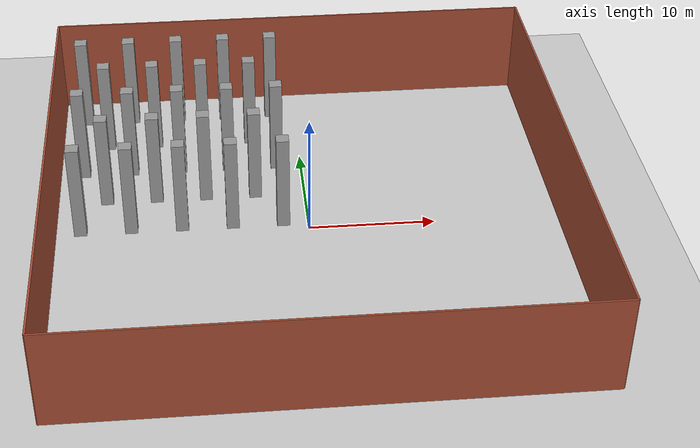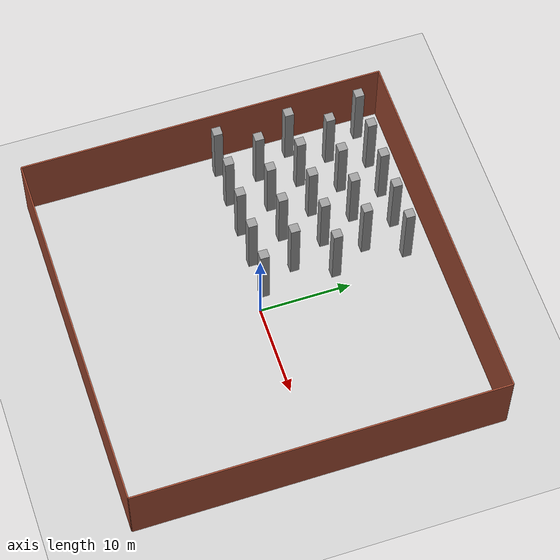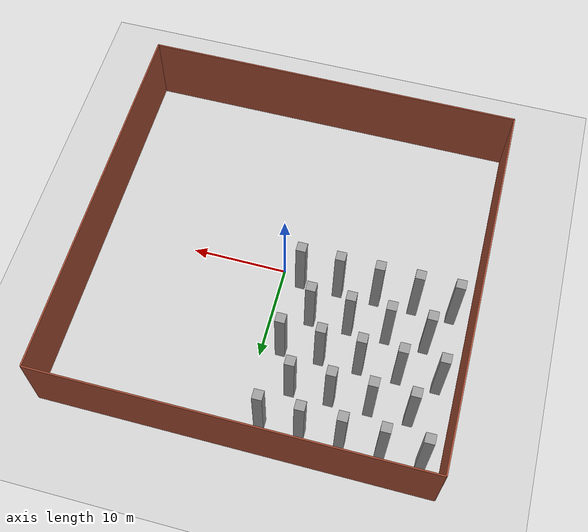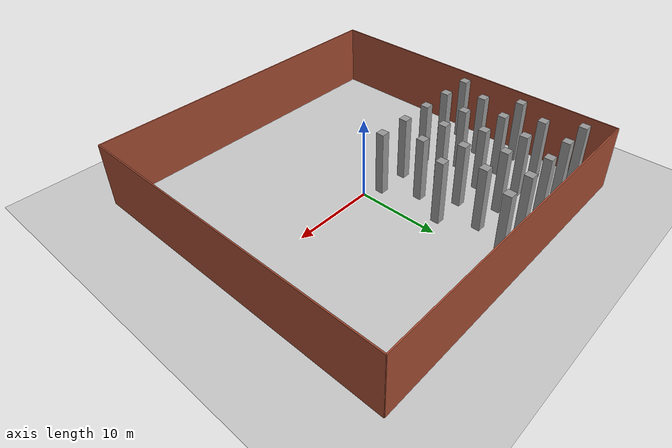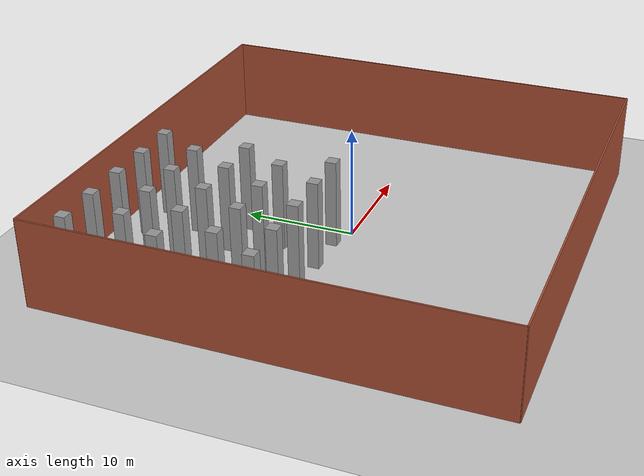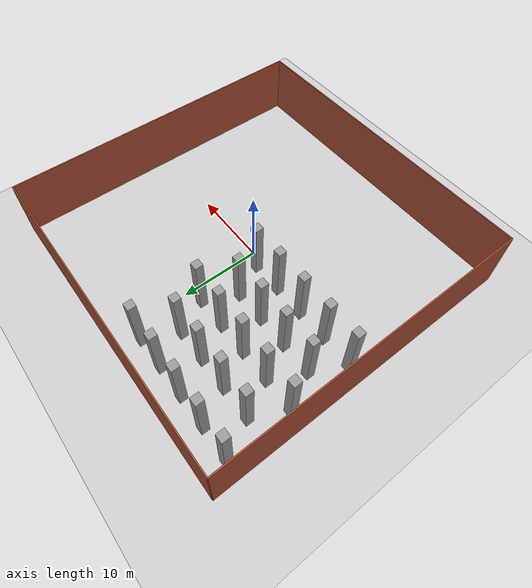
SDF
<sdf version="1.7">
 <world name="default">
  <model name="ground_plane">
   <static>1</static>
   <link name="link">
    <collision name="collision">
     <geometry><plane><normal>0 0 1</normal><size>100 100</size></plane></geometry>
     <surface>
      <contact><collide_bitmask>65535</collide_bitmask></contact>
      <friction><ode><mu>100</mu><mu2>50</mu2></ode></friction>
     </surface>
    </collision>
    <visual name="visual">
     <cast_shadows>0</cast_shadows>
     <geometry><plane><normal>0 0 1</normal><size>100 100</size></plane></geometry>
     <material>
      <script><uri>file://media/materials/scripts/gazebo.material</uri><name>Gazebo/Grey</name></script>
     </material>
    </visual>
   </link>
  </model>
  <model name="sim_room_square">
   <link name="Wall_14">
    <collision name="Wall_14_Collision">
     <geometry><box><size>40 0.15 8</size></box></geometry>
     <pose>0 0 4 0 -0 0</pose>
    </collision>
    <visual name="Wall_14_Visual">
     <pose>0 0 4 0 -0 0</pose>
     <geometry><box><size>40 0.15 8</size></box></geometry>
     <material>
      <script><uri>file://media/materials/scripts/gazebo.material</uri><name>Gazebo/Bricks</name></script>
      <ambient>1 1 1 1</ambient>
     </material>
     <meta><layer>0</layer></meta>
    </visual>
    <pose>20 -0 0 0 -0 -1.5708</pose>
   </link>
   <link name="Wall_15">
    <collision name="Wall_15_Collision">
     <geometry><box><size>40 0.15 8</size></box></geometry>
     <pose>0 0 4 0 -0 0</pose>
    </collision>
    <visual name="Wall_15_Visual">
     <pose>0 0 4 0 -0 0</pose>
     <geometry><box><size>40 0.15 8</size></box></geometry>
     <material>
      <script><uri>file://media/materials/scripts/gazebo.material</uri><name>Gazebo/Bricks</name></script>
      <ambient>1 1 1 1</ambient>
     </material>
     <meta><layer>0</layer></meta>
    </visual>
    <pose>0 -20 0 0 -0 3.14159</pose>
   </link>
   <link name="Wall_16">
    <collision name="Wall_16_Collision">
     <geometry><box><size>40 0.15 8</size></box></geometry>
     <pose>0 0 4 0 -0 0</pose>
    </collision>
    <visual name="Wall_16_Visual">
     <pose>0 0 4 0 -0 0</pose>
     <geometry><box><size>40 0.15 8</size></box></geometry>
     <material>
      <script><uri>file://media/materials/scripts/gazebo.material</uri><name>Gazebo/Bricks</name></script>
      <ambient>1 1 1 1</ambient>
     </material>
     <meta><layer>0</layer></meta>
    </visual>
    <pose>-20 -0 0 0 -0 1.5708</pose>
   </link>
   <link name="Wall_19">
    <collision name="Wall_19_Collision">
     <geometry><box><size>40 0.15 8</size></box></geometry>
     <pose>0 0 4 0 -0 0</pose>
    </collision>
    <visual name="Wall_19_Visual">
     <pose>0 0 4 0 -0 0</pose>
     <geometry><box><size>40 0.15 8</size></box></geometry>
     <material>
      <script><uri>file://media/materials/scripts/gazebo.material</uri><name>Gazebo/Bricks</name></script>
      <ambient>1 1 1 1</ambient>
     </material>
     <meta><layer>0</layer></meta>
    </visual>
    <pose>0 20 0 0 -0 0</pose>
   </link>
   <static>1</static>
  </model>
  <model name="unit_box_static48">
   <link name="link">
    <inertial>
     <mass>1</mass>
     <inertia>
      <ixx>0.166667</ixx>
      <ixy>0</ixy>
      <ixz>0</ixz>
      <iyy>0.166667</iyy>
      <iyz>0</iyz>
      <izz>0.166667</izz>
     </inertia>
    </inertial>
    <visual name="visual">
     <geometry><box><size>1 1 8</size></box></geometry>
     <material>
      <script><name>Gazebo/Grey</name><uri>file://media/materials/scripts/gazebo.material</uri></script>
      <shader type="pixel"/>
     </material>
    </visual>
    <collision name="collision">
     <geometry><box><size>1 1 8</size></box></geometry>
     <surface>
      <friction>
       <ode><mu>1</mu><mu2>1</mu2><fdir1>0 0 0</fdir1><slip1>0</slip1><slip2>0</slip2></ode>
       <torsional>
        <coefficient>1</coefficient>
        <patch_radius>0</patch_radius>
        <surface_radius>0</surface_radius>
        <use_patch_radius>1</use_patch_radius>
        <ode><slip>0</slip></ode>
       </torsional>
      </friction>
      <bounce><restitution_coefficient>0</restitution_coefficient><threshold>1e+06</threshold></bounce>
      <contact>
       <collide_without_contact>0</collide_without_contact>
       <collide_without_contact_bitmask>1</collide_without_contact_bitmask>
       <collide_bitmask>1</collide_bitmask>
       <ode>
        <soft_cfm>0</soft_cfm>
        <soft_erp>0.2</soft_erp>
        <kp>1e+13</kp>
        <kd>1</kd>
        <max_vel>0.01</max_vel>
        <min_depth>0</min_depth>
       </ode>
       <bullet>
        <split_impulse>1</split_impulse>
        <split_impulse_penetration_threshold>-0.01</split_impulse_penetration_threshold>
        <soft_cfm>0</soft_cfm>
        <soft_erp>0.2</soft_erp>
        <kp>1e+13</kp>
        <kd>1</kd>
       </bullet>
      </contact>
     </surface>
    </collision>
   </link>
   <static>1</static>
   <pose>-18 1 4 0 -0 0</pose>
  </model>
  <model name="unit_box_static49">
   <link name="link">
    <inertial>
     <mass>1</mass>
     <inertia>
      <ixx>0.166667</ixx>
      <ixy>0</ixy>
      <ixz>0</ixz>
      <iyy>0.166667</iyy>
      <iyz>0</iyz>
      <izz>0.166667</izz>
     </inertia>
    </inertial>
    <visual name="visual">
     <geometry><box><size>1 1 8</size></box></geometry>
     <material>
      <script><name>Gazebo/Grey</name><uri>file://media/materials/scripts/gazebo.material</uri></script>
      <shader type="pixel"/>
     </material>
    </visual>
    <collision name="collision">
     <geometry><box><size>1 1 8</size></box></geometry>
     <surface>
      <friction>
       <ode><mu>1</mu><mu2>1</mu2><fdir1>0 0 0</fdir1><slip1>0</slip1><slip2>0</slip2></ode>
       <torsional>
        <coefficient>1</coefficient>
        <patch_radius>0</patch_radius>
        <surface_radius>0</surface_radius>
        <use_patch_radius>1</use_patch_radius>
        <ode><slip>0</slip></ode>
       </torsional>
      </friction>
      <bounce><restitution_coefficient>0</restitution_coefficient><threshold>1e+06</threshold></bounce>
      <contact>
       <collide_without_contact>0</collide_without_contact>
       <collide_without_contact_bitmask>1</collide_without_contact_bitmask>
       <collide_bitmask>1</collide_bitmask>
       <ode>
        <soft_cfm>0</soft_cfm>
        <soft_erp>0.2</soft_erp>
        <kp>1e+13</kp>
        <kd>1</kd>
        <max_vel>0.01</max_vel>
        <min_depth>0</min_depth>
       </ode>
       <bullet>
        <split_impulse>1</split_impulse>
        <split_impulse_penetration_threshold>-0.01</split_impulse_penetration_threshold>
        <soft_cfm>0</soft_cfm>
        <soft_erp>0.2</soft_erp>
        <kp>1e+13</kp>
        <kd>1</kd>
       </bullet>
      </contact>
     </surface>
    </collision>
   </link>
   <static>1</static>
   <pose>-14 1 4 0 -0 0</pose>
  </model>
  <model name="unit_box_static50">
   <link name="link">
    <inertial>
     <mass>1</mass>
     <inertia>
      <ixx>0.166667</ixx>
      <ixy>0</ixy>
      <ixz>0</ixz>
      <iyy>0.166667</iyy>
      <iyz>0</iyz>
      <izz>0.166667</izz>
     </inertia>
    </inertial>
    <visual name="visual">
     <geometry><box><size>1 1 8</size></box></geometry>
     <material>
      <script><name>Gazebo/Grey</name><uri>file://media/materials/scripts/gazebo.material</uri></script>
      <shader type="pixel"/>
     </material>
    </visual>
    <collision name="collision">
     <geometry><box><size>1 1 8</size></box></geometry>
     <surface>
      <friction>
       <ode><mu>1</mu><mu2>1</mu2><fdir1>0 0 0</fdir1><slip1>0</slip1><slip2>0</slip2></ode>
       <torsional>
        <coefficient>1</coefficient>
        <patch_radius>0</patch_radius>
        <surface_radius>0</surface_radius>
        <use_patch_radius>1</use_patch_radius>
        <ode><slip>0</slip></ode>
       </torsional>
      </friction>
      <bounce><restitution_coefficient>0</restitution_coefficient><threshold>1e+06</threshold></bounce>
      <contact>
       <collide_without_contact>0</collide_without_contact>
       <collide_without_contact_bitmask>1</collide_without_contact_bitmask>
       <collide_bitmask>1</collide_bitmask>
       <ode>
        <soft_cfm>0</soft_cfm>
        <soft_erp>0.2</soft_erp>
        <kp>1e+13</kp>
        <kd>1</kd>
        <max_vel>0.01</max_vel>
        <min_depth>0</min_depth>
       </ode>
       <bullet>
        <split_impulse>1</split_impulse>
        <split_impulse_penetration_threshold>-0.01</split_impulse_penetration_threshold>
        <soft_cfm>0</soft_cfm>
        <soft_erp>0.2</soft_erp>
        <kp>1e+13</kp>
        <kd>1</kd>
       </bullet>
      </contact>
     </surface>
    </collision>
   </link>
   <static>1</static>
   <pose>-10 1 4 0 -0 0</pose>
  </model>
  <model name="unit_box_static51">
   <link name="link">
    <inertial>
     <mass>1</mass>
     <inertia>
      <ixx>0.166667</ixx>
      <ixy>0</ixy>
      <ixz>0</ixz>
      <iyy>0.166667</iyy>
      <iyz>0</iyz>
      <izz>0.166667</izz>
     </inertia>
    </inertial>
    <visual name="visual">
     <geometry><box><size>1 1 8</size></box></geometry>
     <material>
      <script><name>Gazebo/Grey</name><uri>file://media/materials/scripts/gazebo.material</uri></script>
      <shader type="pixel"/>
     </material>
    </visual>
    <collision name="collision">
     <geometry><box><size>1 1 8</size></box></geometry>
     <surface>
      <friction>
       <ode><mu>1</mu><mu2>1</mu2><fdir1>0 0 0</fdir1><slip1>0</slip1><slip2>0</slip2></ode>
       <torsional>
        <coefficient>1</coefficient>
        <patch_radius>0</patch_radius>
        <surface_radius>0</surface_radius>
        <use_patch_radius>1</use_patch_radius>
        <ode><slip>0</slip></ode>
       </torsional>
      </friction>
      <bounce><restitution_coefficient>0</restitution_coefficient><threshold>1e+06</threshold></bounce>
      <contact>
       <collide_without_contact>0</collide_without_contact>
       <collide_without_contact_bitmask>1</collide_without_contact_bitmask>
       <collide_bitmask>1</collide_bitmask>
       <ode>
        <soft_cfm>0</soft_cfm>
        <soft_erp>0.2</soft_erp>
        <kp>1e+13</kp>
        <kd>1</kd>
        <max_vel>0.01</max_vel>
        <min_depth>0</min_depth>
       </ode>
       <bullet>
        <split_impulse>1</split_impulse>
        <split_impulse_penetration_threshold>-0.01</split_impulse_penetration_threshold>
        <soft_cfm>0</soft_cfm>
        <soft_erp>0.2</soft_erp>
        <kp>1e+13</kp>
        <kd>1</kd>
       </bullet>
      </contact>
     </surface>
    </collision>
   </link>
   <static>1</static>
   <pose>-6 1 4 0 -0 0</pose>
  </model>
  <model name="unit_box_static52">
   <link name="link">
    <inertial>
     <mass>1</mass>
     <inertia>
      <ixx>0.166667</ixx>
      <ixy>0</ixy>
      <ixz>0</ixz>
      <iyy>0.166667</iyy>
      <iyz>0</iyz>
      <izz>0.166667</izz>
     </inertia>
    </inertial>
    <visual name="visual">
     <geometry><box><size>1 1 8</size></box></geometry>
     <material>
      <script><name>Gazebo/Grey</name><uri>file://media/materials/scripts/gazebo.material</uri></script>
      <shader type="pixel"/>
     </material>
    </visual>
    <collision name="collision">
     <geometry><box><size>1 1 8</size></box></geometry>
     <surface>
      <friction>
       <ode><mu>1</mu><mu2>1</mu2><fdir1>0 0 0</fdir1><slip1>0</slip1><slip2>0</slip2></ode>
       <torsional>
        <coefficient>1</coefficient>
        <patch_radius>0</patch_radius>
        <surface_radius>0</surface_radius>
        <use_patch_radius>1</use_patch_radius>
        <ode><slip>0</slip></ode>
       </torsional>
      </friction>
      <bounce><restitution_coefficient>0</restitution_coefficient><threshold>1e+06</threshold></bounce>
      <contact>
       <collide_without_contact>0</collide_without_contact>
       <collide_without_contact_bitmask>1</collide_without_contact_bitmask>
       <collide_bitmask>1</collide_bitmask>
       <ode>
        <soft_cfm>0</soft_cfm>
        <soft_erp>0.2</soft_erp>
        <kp>1e+13</kp>
        <kd>1</kd>
        <max_vel>0.01</max_vel>
        <min_depth>0</min_depth>
       </ode>
       <bullet>
        <split_impulse>1</split_impulse>
        <split_impulse_penetration_threshold>-0.01</split_impulse_penetration_threshold>
        <soft_cfm>0</soft_cfm>
        <soft_erp>0.2</soft_erp>
        <kp>1e+13</kp>
        <kd>1</kd>
       </bullet>
      </contact>
     </surface>
    </collision>
   </link>
   <static>1</static>
   <pose>-2 1 4 0 -0 0</pose>
  </model>
  <model name="unit_box_static58">
   <link name="link">
    <inertial>
     <mass>1</mass>
     <inertia>
      <ixx>0.166667</ixx>
      <ixy>0</ixy>
      <ixz>0</ixz>
      <iyy>0.166667</iyy>
      <iyz>0</iyz>
      <izz>0.166667</izz>
     </inertia>
    </inertial>
    <visual name="visual">
     <geometry><box><size>1 1 8</size></box></geometry>
     <material>
      <script><name>Gazebo/Grey</name><uri>file://media/materials/scripts/gazebo.material</uri></script>
      <shader type="pixel"/>
     </material>
    </visual>
    <collision name="collision">
     <geometry><box><size>1 1 8</size></box></geometry>
     <surface>
      <friction>
       <ode><mu>1</mu><mu2>1</mu2><fdir1>0 0 0</fdir1><slip1>0</slip1><slip2>0</slip2></ode>
       <torsional>
        <coefficient>1</coefficient>
        <patch_radius>0</patch_radius>
        <surface_radius>0</surface_radius>
        <use_patch_radius>1</use_patch_radius>
        <ode><slip>0</slip></ode>
       </torsional>
      </friction>
      <bounce><restitution_coefficient>0</restitution_coefficient><threshold>1e+06</threshold></bounce>
      <contact>
       <collide_without_contact>0</collide_without_contact>
       <collide_without_contact_bitmask>1</collide_without_contact_bitmask>
       <collide_bitmask>1</collide_bitmask>
       <ode>
        <soft_cfm>0</soft_cfm>
        <soft_erp>0.2</soft_erp>
        <kp>1e+13</kp>
        <kd>1</kd>
        <max_vel>0.01</max_vel>
        <min_depth>0</min_depth>
       </ode>
       <bullet>
        <split_impulse>1</split_impulse>
        <split_impulse_penetration_threshold>-0.01</split_impulse_penetration_threshold>
        <soft_cfm>0</soft_cfm>
        <soft_erp>0.2</soft_erp>
        <kp>1e+13</kp>
        <kd>1</kd>
       </bullet>
      </contact>
     </surface>
    </collision>
   </link>
   <static>1</static>
   <pose>-16 5 4 0 -0 0</pose>
  </model>
  <model name="unit_box_static59">
   <link name="link">
    <inertial>
     <mass>1</mass>
     <inertia>
      <ixx>0.166667</ixx>
      <ixy>0</ixy>
      <ixz>0</ixz>
      <iyy>0.166667</iyy>
      <iyz>0</iyz>
      <izz>0.166667</izz>
     </inertia>
    </inertial>
    <visual name="visual">
     <geometry><box><size>1 1 8</size></box></geometry>
     <material>
      <script><name>Gazebo/Grey</name><uri>file://media/materials/scripts/gazebo.material</uri></script>
      <shader type="pixel"/>
     </material>
    </visual>
    <collision name="collision">
     <geometry><box><size>1 1 8</size></box></geometry>
     <surface>
      <friction>
       <ode><mu>1</mu><mu2>1</mu2><fdir1>0 0 0</fdir1><slip1>0</slip1><slip2>0</slip2></ode>
       <torsional>
        <coefficient>1</coefficient>
        <patch_radius>0</patch_radius>
        <surface_radius>0</surface_radius>
        <use_patch_radius>1</use_patch_radius>
        <ode><slip>0</slip></ode>
       </torsional>
      </friction>
      <bounce><restitution_coefficient>0</restitution_coefficient><threshold>1e+06</threshold></bounce>
      <contact>
       <collide_without_contact>0</collide_without_contact>
       <collide_without_contact_bitmask>1</collide_without_contact_bitmask>
       <collide_bitmask>1</collide_bitmask>
       <ode>
        <soft_cfm>0</soft_cfm>
        <soft_erp>0.2</soft_erp>
        <kp>1e+13</kp>
        <kd>1</kd>
        <max_vel>0.01</max_vel>
        <min_depth>0</min_depth>
       </ode>
       <bullet>
        <split_impulse>1</split_impulse>
        <split_impulse_penetration_threshold>-0.01</split_impulse_penetration_threshold>
        <soft_cfm>0</soft_cfm>
        <soft_erp>0.2</soft_erp>
        <kp>1e+13</kp>
        <kd>1</kd>
       </bullet>
      </contact>
     </surface>
    </collision>
   </link>
   <static>1</static>
   <pose>-12 5 4 0 -0 0</pose>
  </model>
  <model name="unit_box_static60">
   <link name="link">
    <inertial>
     <mass>1</mass>
     <inertia>
      <ixx>0.166667</ixx>
      <ixy>0</ixy>
      <ixz>0</ixz>
      <iyy>0.166667</iyy>
      <iyz>0</iyz>
      <izz>0.166667</izz>
     </inertia>
    </inertial>
    <visual name="visual">
     <geometry><box><size>1 1 8</size></box></geometry>
     <material>
      <script><name>Gazebo/Grey</name><uri>file://media/materials/scripts/gazebo.material</uri></script>
      <shader type="pixel"/>
     </material>
    </visual>
    <collision name="collision">
     <geometry><box><size>1 1 8</size></box></geometry>
     <surface>
      <friction>
       <ode><mu>1</mu><mu2>1</mu2><fdir1>0 0 0</fdir1><slip1>0</slip1><slip2>0</slip2></ode>
       <torsional>
        <coefficient>1</coefficient>
        <patch_radius>0</patch_radius>
        <surface_radius>0</surface_radius>
        <use_patch_radius>1</use_patch_radius>
        <ode><slip>0</slip></ode>
       </torsional>
      </friction>
      <bounce><restitution_coefficient>0</restitution_coefficient><threshold>1e+06</threshold></bounce>
      <contact>
       <collide_without_contact>0</collide_without_contact>
       <collide_without_contact_bitmask>1</collide_without_contact_bitmask>
       <collide_bitmask>1</collide_bitmask>
       <ode>
        <soft_cfm>0</soft_cfm>
        <soft_erp>0.2</soft_erp>
        <kp>1e+13</kp>
        <kd>1</kd>
        <max_vel>0.01</max_vel>
        <min_depth>0</min_depth>
       </ode>
       <bullet>
        <split_impulse>1</split_impulse>
        <split_impulse_penetration_threshold>-0.01</split_impulse_penetration_threshold>
        <soft_cfm>0</soft_cfm>
        <soft_erp>0.2</soft_erp>
        <kp>1e+13</kp>
        <kd>1</kd>
       </bullet>
      </contact>
     </surface>
    </collision>
   </link>
   <static>1</static>
   <pose>-8 5 4 0 -0 0</pose>
  </model>
  <model name="unit_box_static61">
   <link name="link">
    <inertial>
     <mass>1</mass>
     <inertia>
      <ixx>0.166667</ixx>
      <ixy>0</ixy>
      <ixz>0</ixz>
      <iyy>0.166667</iyy>
      <iyz>0</iyz>
      <izz>0.166667</izz>
     </inertia>
    </inertial>
    <visual name="visual">
     <geometry><box><size>1 1 8</size></box></geometry>
     <material>
      <script><name>Gazebo/Grey</name><uri>file://media/materials/scripts/gazebo.material</uri></script>
      <shader type="pixel"/>
     </material>
    </visual>
    <collision name="collision">
     <geometry><box><size>1 1 8</size></box></geometry>
     <surface>
      <friction>
       <ode><mu>1</mu><mu2>1</mu2><fdir1>0 0 0</fdir1><slip1>0</slip1><slip2>0</slip2></ode>
       <torsional>
        <coefficient>1</coefficient>
        <patch_radius>0</patch_radius>
        <surface_radius>0</surface_radius>
        <use_patch_radius>1</use_patch_radius>
        <ode><slip>0</slip></ode>
       </torsional>
      </friction>
      <bounce><restitution_coefficient>0</restitution_coefficient><threshold>1e+06</threshold></bounce>
      <contact>
       <collide_without_contact>0</collide_without_contact>
       <collide_without_contact_bitmask>1</collide_without_contact_bitmask>
       <collide_bitmask>1</collide_bitmask>
       <ode>
        <soft_cfm>0</soft_cfm>
        <soft_erp>0.2</soft_erp>
        <kp>1e+13</kp>
        <kd>1</kd>
        <max_vel>0.01</max_vel>
        <min_depth>0</min_depth>
       </ode>
       <bullet>
        <split_impulse>1</split_impulse>
        <split_impulse_penetration_threshold>-0.01</split_impulse_penetration_threshold>
        <soft_cfm>0</soft_cfm>
        <soft_erp>0.2</soft_erp>
        <kp>1e+13</kp>
        <kd>1</kd>
       </bullet>
      </contact>
     </surface>
    </collision>
   </link>
   <static>1</static>
   <pose>-4 5 4 0 -0 0</pose>
  </model>
  <model name="unit_box_static67">
   <link name="link">
    <inertial>
     <mass>1</mass>
     <inertia>
      <ixx>0.166667</ixx>
      <ixy>0</ixy>
      <ixz>0</ixz>
      <iyy>0.166667</iyy>
      <iyz>0</iyz>
      <izz>0.166667</izz>
     </inertia>
    </inertial>
    <visual name="visual">
     <geometry><box><size>1 1 8</size></box></geometry>
     <material>
      <script><name>Gazebo/Grey</name><uri>file://media/materials/scripts/gazebo.material</uri></script>
      <shader type="pixel"/>
     </material>
    </visual>
    <collision name="collision">
     <geometry><box><size>1 1 8</size></box></geometry>
     <surface>
      <friction>
       <ode><mu>1</mu><mu2>1</mu2><fdir1>0 0 0</fdir1><slip1>0</slip1><slip2>0</slip2></ode>
       <torsional>
        <coefficient>1</coefficient>
        <patch_radius>0</patch_radius>
        <surface_radius>0</surface_radius>
        <use_patch_radius>1</use_patch_radius>
        <ode><slip>0</slip></ode>
       </torsional>
      </friction>
      <bounce><restitution_coefficient>0</restitution_coefficient><threshold>1e+06</threshold></bounce>
      <contact>
       <collide_without_contact>0</collide_without_contact>
       <collide_without_contact_bitmask>1</collide_without_contact_bitmask>
       <collide_bitmask>1</collide_bitmask>
       <ode>
        <soft_cfm>0</soft_cfm>
        <soft_erp>0.2</soft_erp>
        <kp>1e+13</kp>
        <kd>1</kd>
        <max_vel>0.01</max_vel>
        <min_depth>0</min_depth>
       </ode>
       <bullet>
        <split_impulse>1</split_impulse>
        <split_impulse_penetration_threshold>-0.01</split_impulse_penetration_threshold>
        <soft_cfm>0</soft_cfm>
        <soft_erp>0.2</soft_erp>
        <kp>1e+13</kp>
        <kd>1</kd>
       </bullet>
      </contact>
     </surface>
    </collision>
   </link>
   <static>1</static>
   <pose>-18 9 4 0 -0 0</pose>
  </model>
  <model name="unit_box_static68">
   <link name="link">
    <inertial>
     <mass>1</mass>
     <inertia>
      <ixx>0.166667</ixx>
      <ixy>0</ixy>
      <ixz>0</ixz>
      <iyy>0.166667</iyy>
      <iyz>0</iyz>
      <izz>0.166667</izz>
     </inertia>
    </inertial>
    <visual name="visual">
     <geometry><box><size>1 1 8</size></box></geometry>
     <material>
      <script><name>Gazebo/Grey</name><uri>file://media/materials/scripts/gazebo.material</uri></script>
      <shader type="pixel"/>
     </material>
    </visual>
    <collision name="collision">
     <geometry><box><size>1 1 8</size></box></geometry>
     <surface>
      <friction>
       <ode><mu>1</mu><mu2>1</mu2><fdir1>0 0 0</fdir1><slip1>0</slip1><slip2>0</slip2></ode>
       <torsional>
        <coefficient>1</coefficient>
        <patch_radius>0</patch_radius>
        <surface_radius>0</surface_radius>
        <use_patch_radius>1</use_patch_radius>
        <ode><slip>0</slip></ode>
       </torsional>
      </friction>
      <bounce><restitution_coefficient>0</restitution_coefficient><threshold>1e+06</threshold></bounce>
      <contact>
       <collide_without_contact>0</collide_without_contact>
       <collide_without_contact_bitmask>1</collide_without_contact_bitmask>
       <collide_bitmask>1</collide_bitmask>
       <ode>
        <soft_cfm>0</soft_cfm>
        <soft_erp>0.2</soft_erp>
        <kp>1e+13</kp>
        <kd>1</kd>
        <max_vel>0.01</max_vel>
        <min_depth>0</min_depth>
       </ode>
       <bullet>
        <split_impulse>1</split_impulse>
        <split_impulse_penetration_threshold>-0.01</split_impulse_penetration_threshold>
        <soft_cfm>0</soft_cfm>
        <soft_erp>0.2</soft_erp>
        <kp>1e+13</kp>
        <kd>1</kd>
       </bullet>
      </contact>
     </surface>
    </collision>
   </link>
   <static>1</static>
   <pose>-14 9 4 0 -0 0</pose>
  </model>
  <model name="unit_box_static69">
   <link name="link">
    <inertial>
     <mass>1</mass>
     <inertia>
      <ixx>0.166667</ixx>
      <ixy>0</ixy>
      <ixz>0</ixz>
      <iyy>0.166667</iyy>
      <iyz>0</iyz>
      <izz>0.166667</izz>
     </inertia>
    </inertial>
    <visual name="visual">
     <geometry><box><size>1 1 8</size></box></geometry>
     <material>
      <script><name>Gazebo/Grey</name><uri>file://media/materials/scripts/gazebo.material</uri></script>
      <shader type="pixel"/>
     </material>
    </visual>
    <collision name="collision">
     <geometry><box><size>1 1 8</size></box></geometry>
     <surface>
      <friction>
       <ode><mu>1</mu><mu2>1</mu2><fdir1>0 0 0</fdir1><slip1>0</slip1><slip2>0</slip2></ode>
       <torsional>
        <coefficient>1</coefficient>
        <patch_radius>0</patch_radius>
        <surface_radius>0</surface_radius>
        <use_patch_radius>1</use_patch_radius>
        <ode><slip>0</slip></ode>
       </torsional>
      </friction>
      <bounce><restitution_coefficient>0</restitution_coefficient><threshold>1e+06</threshold></bounce>
      <contact>
       <collide_without_contact>0</collide_without_contact>
       <collide_without_contact_bitmask>1</collide_without_contact_bitmask>
       <collide_bitmask>1</collide_bitmask>
       <ode>
        <soft_cfm>0</soft_cfm>
        <soft_erp>0.2</soft_erp>
        <kp>1e+13</kp>
        <kd>1</kd>
        <max_vel>0.01</max_vel>
        <min_depth>0</min_depth>
       </ode>
       <bullet>
        <split_impulse>1</split_impulse>
        <split_impulse_penetration_threshold>-0.01</split_impulse_penetration_threshold>
        <soft_cfm>0</soft_cfm>
        <soft_erp>0.2</soft_erp>
        <kp>1e+13</kp>
        <kd>1</kd>
       </bullet>
      </contact>
     </surface>
    </collision>
   </link>
   <static>1</static>
   <pose>-10 9 4 0 -0 0</pose>
  </model>
  <model name="unit_box_static70">
   <link name="link">
    <inertial>
     <mass>1</mass>
     <inertia>
      <ixx>0.166667</ixx>
      <ixy>0</ixy>
      <ixz>0</ixz>
      <iyy>0.166667</iyy>
      <iyz>0</iyz>
      <izz>0.166667</izz>
     </inertia>
    </inertial>
    <visual name="visual">
     <geometry><box><size>1 1 8</size></box></geometry>
     <material>
      <script><name>Gazebo/Grey</name><uri>file://media/materials/scripts/gazebo.material</uri></script>
      <shader type="pixel"/>
     </material>
    </visual>
    <collision name="collision">
     <geometry><box><size>1 1 8</size></box></geometry>
     <surface>
      <friction>
       <ode><mu>1</mu><mu2>1</mu2><fdir1>0 0 0</fdir1><slip1>0</slip1><slip2>0</slip2></ode>
       <torsional>
        <coefficient>1</coefficient>
        <patch_radius>0</patch_radius>
        <surface_radius>0</surface_radius>
        <use_patch_radius>1</use_patch_radius>
        <ode><slip>0</slip></ode>
       </torsional>
      </friction>
      <bounce><restitution_coefficient>0</restitution_coefficient><threshold>1e+06</threshold></bounce>
      <contact>
       <collide_without_contact>0</collide_without_contact>
       <collide_without_contact_bitmask>1</collide_without_contact_bitmask>
       <collide_bitmask>1</collide_bitmask>
       <ode>
        <soft_cfm>0</soft_cfm>
        <soft_erp>0.2</soft_erp>
        <kp>1e+13</kp>
        <kd>1</kd>
        <max_vel>0.01</max_vel>
        <min_depth>0</min_depth>
       </ode>
       <bullet>
        <split_impulse>1</split_impulse>
        <split_impulse_penetration_threshold>-0.01</split_impulse_penetration_threshold>
        <soft_cfm>0</soft_cfm>
        <soft_erp>0.2</soft_erp>
        <kp>1e+13</kp>
        <kd>1</kd>
       </bullet>
      </contact>
     </surface>
    </collision>
   </link>
   <static>1</static>
   <pose>-6 9 4 0 -0 0</pose>
  </model>
  <model name="unit_box_static71">
   <link name="link">
    <inertial>
     <mass>1</mass>
     <inertia>
      <ixx>0.166667</ixx>
      <ixy>0</ixy>
      <ixz>0</ixz>
      <iyy>0.166667</iyy>
      <iyz>0</iyz>
      <izz>0.166667</izz>
     </inertia>
    </inertial>
    <visual name="visual">
     <geometry><box><size>1 1 8</size></box></geometry>
     <material>
      <script><name>Gazebo/Grey</name><uri>file://media/materials/scripts/gazebo.material</uri></script>
      <shader type="pixel"/>
     </material>
    </visual>
    <collision name="collision">
     <geometry><box><size>1 1 8</size></box></geometry>
     <surface>
      <friction>
       <ode><mu>1</mu><mu2>1</mu2><fdir1>0 0 0</fdir1><slip1>0</slip1><slip2>0</slip2></ode>
       <torsional>
        <coefficient>1</coefficient>
        <patch_radius>0</patch_radius>
        <surface_radius>0</surface_radius>
        <use_patch_radius>1</use_patch_radius>
        <ode><slip>0</slip></ode>
       </torsional>
      </friction>
      <bounce><restitution_coefficient>0</restitution_coefficient><threshold>1e+06</threshold></bounce>
      <contact>
       <collide_without_contact>0</collide_without_contact>
       <collide_without_contact_bitmask>1</collide_without_contact_bitmask>
       <collide_bitmask>1</collide_bitmask>
       <ode>
        <soft_cfm>0</soft_cfm>
        <soft_erp>0.2</soft_erp>
        <kp>1e+13</kp>
        <kd>1</kd>
        <max_vel>0.01</max_vel>
        <min_depth>0</min_depth>
       </ode>
       <bullet>
        <split_impulse>1</split_impulse>
        <split_impulse_penetration_threshold>-0.01</split_impulse_penetration_threshold>
        <soft_cfm>0</soft_cfm>
        <soft_erp>0.2</soft_erp>
        <kp>1e+13</kp>
        <kd>1</kd>
       </bullet>
      </contact>
     </surface>
    </collision>
   </link>
   <static>1</static>
   <pose>-2 9 4 0 -0 0</pose>
  </model>
  <model name="unit_box_static77">
   <link name="link">
    <inertial>
     <mass>1</mass>
     <inertia>
      <ixx>0.166667</ixx>
      <ixy>0</ixy>
      <ixz>0</ixz>
      <iyy>0.166667</iyy>
      <iyz>0</iyz>
      <izz>0.166667</izz>
     </inertia>
    </inertial>
    <visual name="visual">
     <geometry><box><size>1 1 8</size></box></geometry>
     <material>
      <script><name>Gazebo/Grey</name><uri>file://media/materials/scripts/gazebo.material</uri></script>
      <shader type="pixel"/>
     </material>
    </visual>
    <collision name="collision">
     <geometry><box><size>1 1 8</size></box></geometry>
     <surface>
      <friction>
       <ode><mu>1</mu><mu2>1</mu2><fdir1>0 0 0</fdir1><slip1>0</slip1><slip2>0</slip2></ode>
       <torsional>
        <coefficient>1</coefficient>
        <patch_radius>0</patch_radius>
        <surface_radius>0</surface_radius>
        <use_patch_radius>1</use_patch_radius>
        <ode><slip>0</slip></ode>
       </torsional>
      </friction>
      <bounce><restitution_coefficient>0</restitution_coefficient><threshold>1e+06</threshold></bounce>
      <contact>
       <collide_without_contact>0</collide_without_contact>
       <collide_without_contact_bitmask>1</collide_without_contact_bitmask>
       <collide_bitmask>1</collide_bitmask>
       <ode>
        <soft_cfm>0</soft_cfm>
        <soft_erp>0.2</soft_erp>
        <kp>1e+13</kp>
        <kd>1</kd>
        <max_vel>0.01</max_vel>
        <min_depth>0</min_depth>
       </ode>
       <bullet>
        <split_impulse>1</split_impulse>
        <split_impulse_penetration_threshold>-0.01</split_impulse_penetration_threshold>
        <soft_cfm>0</soft_cfm>
        <soft_erp>0.2</soft_erp>
        <kp>1e+13</kp>
        <kd>1</kd>
       </bullet>
      </contact>
     </surface>
    </collision>
   </link>
   <static>1</static>
   <pose>-16 13 4 0 -0 0</pose>
  </model>
  <model name="unit_box_static78">
   <link name="link">
    <inertial>
     <mass>1</mass>
     <inertia>
      <ixx>0.166667</ixx>
      <ixy>0</ixy>
      <ixz>0</ixz>
      <iyy>0.166667</iyy>
      <iyz>0</iyz>
      <izz>0.166667</izz>
     </inertia>
    </inertial>
    <visual name="visual">
     <geometry><box><size>1 1 8</size></box></geometry>
     <material>
      <script><name>Gazebo/Grey</name><uri>file://media/materials/scripts/gazebo.material</uri></script>
      <shader type="pixel"/>
     </material>
    </visual>
    <collision name="collision">
     <geometry><box><size>1 1 8</size></box></geometry>
     <surface>
      <friction>
       <ode><mu>1</mu><mu2>1</mu2><fdir1>0 0 0</fdir1><slip1>0</slip1><slip2>0</slip2></ode>
       <torsional>
        <coefficient>1</coefficient>
        <patch_radius>0</patch_radius>
        <surface_radius>0</surface_radius>
        <use_patch_radius>1</use_patch_radius>
        <ode><slip>0</slip></ode>
       </torsional>
      </friction>
      <bounce><restitution_coefficient>0</restitution_coefficient><threshold>1e+06</threshold></bounce>
      <contact>
       <collide_without_contact>0</collide_without_contact>
       <collide_without_contact_bitmask>1</collide_without_contact_bitmask>
       <collide_bitmask>1</collide_bitmask>
       <ode>
        <soft_cfm>0</soft_cfm>
        <soft_erp>0.2</soft_erp>
        <kp>1e+13</kp>
        <kd>1</kd>
        <max_vel>0.01</max_vel>
        <min_depth>0</min_depth>
       </ode>
       <bullet>
        <split_impulse>1</split_impulse>
        <split_impulse_penetration_threshold>-0.01</split_impulse_penetration_threshold>
        <soft_cfm>0</soft_cfm>
        <soft_erp>0.2</soft_erp>
        <kp>1e+13</kp>
        <kd>1</kd>
       </bullet>
      </contact>
     </surface>
    </collision>
   </link>
   <static>1</static>
   <pose>-12 13 4 0 -0 0</pose>
  </model>
  <model name="unit_box_static79">
   <link name="link">
    <inertial>
     <mass>1</mass>
     <inertia>
      <ixx>0.166667</ixx>
      <ixy>0</ixy>
      <ixz>0</ixz>
      <iyy>0.166667</iyy>
      <iyz>0</iyz>
      <izz>0.166667</izz>
     </inertia>
    </inertial>
    <visual name="visual">
     <geometry><box><size>1 1 8</size></box></geometry>
     <material>
      <script><name>Gazebo/Grey</name><uri>file://media/materials/scripts/gazebo.material</uri></script>
      <shader type="pixel"/>
     </material>
    </visual>
    <collision name="collision">
     <geometry><box><size>1 1 8</size></box></geometry>
     <surface>
      <friction>
       <ode><mu>1</mu><mu2>1</mu2><fdir1>0 0 0</fdir1><slip1>0</slip1><slip2>0</slip2></ode>
       <torsional>
        <coefficient>1</coefficient>
        <patch_radius>0</patch_radius>
        <surface_radius>0</surface_radius>
        <use_patch_radius>1</use_patch_radius>
        <ode><slip>0</slip></ode>
       </torsional>
      </friction>
      <bounce><restitution_coefficient>0</restitution_coefficient><threshold>1e+06</threshold></bounce>
      <contact>
       <collide_without_contact>0</collide_without_contact>
       <collide_without_contact_bitmask>1</collide_without_contact_bitmask>
       <collide_bitmask>1</collide_bitmask>
       <ode>
        <soft_cfm>0</soft_cfm>
        <soft_erp>0.2</soft_erp>
        <kp>1e+13</kp>
        <kd>1</kd>
        <max_vel>0.01</max_vel>
        <min_depth>0</min_depth>
       </ode>
       <bullet>
        <split_impulse>1</split_impulse>
        <split_impulse_penetration_threshold>-0.01</split_impulse_penetration_threshold>
        <soft_cfm>0</soft_cfm>
        <soft_erp>0.2</soft_erp>
        <kp>1e+13</kp>
        <kd>1</kd>
       </bullet>
      </contact>
     </surface>
    </collision>
   </link>
   <static>1</static>
   <pose>-8 13 4 0 -0 0</pose>
  </model>
  <model name="unit_box_static80">
   <link name="link">
    <inertial>
     <mass>1</mass>
     <inertia>
      <ixx>0.166667</ixx>
      <ixy>0</ixy>
      <ixz>0</ixz>
      <iyy>0.166667</iyy>
      <iyz>0</iyz>
      <izz>0.166667</izz>
     </inertia>
    </inertial>
    <visual name="visual">
     <geometry><box><size>1 1 8</size></box></geometry>
     <material>
      <script><name>Gazebo/Grey</name><uri>file://media/materials/scripts/gazebo.material</uri></script>
      <shader type="pixel"/>
     </material>
    </visual>
    <collision name="collision">
     <geometry><box><size>1 1 8</size></box></geometry>
     <surface>
      <friction>
       <ode><mu>1</mu><mu2>1</mu2><fdir1>0 0 0</fdir1><slip1>0</slip1><slip2>0</slip2></ode>
       <torsional>
        <coefficient>1</coefficient>
        <patch_radius>0</patch_radius>
        <surface_radius>0</surface_radius>
        <use_patch_radius>1</use_patch_radius>
        <ode><slip>0</slip></ode>
       </torsional>
      </friction>
      <bounce><restitution_coefficient>0</restitution_coefficient><threshold>1e+06</threshold></bounce>
      <contact>
       <collide_without_contact>0</collide_without_contact>
       <collide_without_contact_bitmask>1</collide_without_contact_bitmask>
       <collide_bitmask>1</collide_bitmask>
       <ode>
        <soft_cfm>0</soft_cfm>
        <soft_erp>0.2</soft_erp>
        <kp>1e+13</kp>
        <kd>1</kd>
        <max_vel>0.01</max_vel>
        <min_depth>0</min_depth>
       </ode>
       <bullet>
        <split_impulse>1</split_impulse>
        <split_impulse_penetration_threshold>-0.01</split_impulse_penetration_threshold>
        <soft_cfm>0</soft_cfm>
        <soft_erp>0.2</soft_erp>
        <kp>1e+13</kp>
        <kd>1</kd>
       </bullet>
      </contact>
     </surface>
    </collision>
   </link>
   <static>1</static>
   <pose>-4 13 4 0 -0 0</pose>
  </model>
  <model name="unit_box_static86">
   <link name="link">
    <inertial>
     <mass>1</mass>
     <inertia>
      <ixx>0.166667</ixx>
      <ixy>0</ixy>
      <ixz>0</ixz>
      <iyy>0.166667</iyy>
      <iyz>0</iyz>
      <izz>0.166667</izz>
     </inertia>
    </inertial>
    <visual name="visual">
     <geometry><box><size>1 1 8</size></box></geometry>
     <material>
      <script><name>Gazebo/Grey</name><uri>file://media/materials/scripts/gazebo.material</uri></script>
      <shader type="pixel"/>
     </material>
    </visual>
    <collision name="collision">
     <geometry><box><size>1 1 8</size></box></geometry>
     <surface>
      <friction>
       <ode><mu>1</mu><mu2>1</mu2><fdir1>0 0 0</fdir1><slip1>0</slip1><slip2>0</slip2></ode>
       <torsional>
        <coefficient>1</coefficient>
        <patch_radius>0</patch_radius>
        <surface_radius>0</surface_radius>
        <use_patch_radius>1</use_patch_radius>
        <ode><slip>0</slip></ode>
       </torsional>
      </friction>
      <bounce><restitution_coefficient>0</restitution_coefficient><threshold>1e+06</threshold></bounce>
      <contact>
       <collide_without_contact>0</collide_without_contact>
       <collide_without_contact_bitmask>1</collide_without_contact_bitmask>
       <collide_bitmask>1</collide_bitmask>
       <ode>
        <soft_cfm>0</soft_cfm>
        <soft_erp>0.2</soft_erp>
        <kp>1e+13</kp>
        <kd>1</kd>
        <max_vel>0.01</max_vel>
        <min_depth>0</min_depth>
       </ode>
       <bullet>
        <split_impulse>1</split_impulse>
        <split_impulse_penetration_threshold>-0.01</split_impulse_penetration_threshold>
        <soft_cfm>0</soft_cfm>
        <soft_erp>0.2</soft_erp>
        <kp>1e+13</kp>
        <kd>1</kd>
       </bullet>
      </contact>
     </surface>
    </collision>
   </link>
   <static>1</static>
   <pose>-18 17 4 0 -0 0</pose>
  </model>
  <model name="unit_box_static87">
   <link name="link">
    <inertial>
     <mass>1</mass>
     <inertia>
      <ixx>0.166667</ixx>
      <ixy>0</ixy>
      <ixz>0</ixz>
      <iyy>0.166667</iyy>
      <iyz>0</iyz>
      <izz>0.166667</izz>
     </inertia>
    </inertial>
    <visual name="visual">
     <geometry><box><size>1 1 8</size></box></geometry>
     <material>
      <script><name>Gazebo/Grey</name><uri>file://media/materials/scripts/gazebo.material</uri></script>
      <shader type="pixel"/>
     </material>
    </visual>
    <collision name="collision">
     <geometry><box><size>1 1 8</size></box></geometry>
     <surface>
      <friction>
       <ode><mu>1</mu><mu2>1</mu2><fdir1>0 0 0</fdir1><slip1>0</slip1><slip2>0</slip2></ode>
       <torsional>
        <coefficient>1</coefficient>
        <patch_radius>0</patch_radius>
        <surface_radius>0</surface_radius>
        <use_patch_radius>1</use_patch_radius>
        <ode><slip>0</slip></ode>
       </torsional>
      </friction>
      <bounce><restitution_coefficient>0</restitution_coefficient><threshold>1e+06</threshold></bounce>
      <contact>
       <collide_without_contact>0</collide_without_contact>
       <collide_without_contact_bitmask>1</collide_without_contact_bitmask>
       <collide_bitmask>1</collide_bitmask>
       <ode>
        <soft_cfm>0</soft_cfm>
        <soft_erp>0.2</soft_erp>
        <kp>1e+13</kp>
        <kd>1</kd>
        <max_vel>0.01</max_vel>
        <min_depth>0</min_depth>
       </ode>
       <bullet>
        <split_impulse>1</split_impulse>
        <split_impulse_penetration_threshold>-0.01</split_impulse_penetration_threshold>
        <soft_cfm>0</soft_cfm>
        <soft_erp>0.2</soft_erp>
        <kp>1e+13</kp>
        <kd>1</kd>
       </bullet>
      </contact>
     </surface>
    </collision>
   </link>
   <static>1</static>
   <pose>-14 17 4 0 -0 0</pose>
  </model>
  <model name="unit_box_static88">
   <link name="link">
    <inertial>
     <mass>1</mass>
     <inertia>
      <ixx>0.166667</ixx>
      <ixy>0</ixy>
      <ixz>0</ixz>
      <iyy>0.166667</iyy>
      <iyz>0</iyz>
      <izz>0.166667</izz>
     </inertia>
    </inertial>
    <visual name="visual">
     <geometry><box><size>1 1 8</size></box></geometry>
     <material>
      <script><name>Gazebo/Grey</name><uri>file://media/materials/scripts/gazebo.material</uri></script>
      <shader type="pixel"/>
     </material>
    </visual>
    <collision name="collision">
     <geometry><box><size>1 1 8</size></box></geometry>
     <surface>
      <friction>
       <ode><mu>1</mu><mu2>1</mu2><fdir1>0 0 0</fdir1><slip1>0</slip1><slip2>0</slip2></ode>
       <torsional>
        <coefficient>1</coefficient>
        <patch_radius>0</patch_radius>
        <surface_radius>0</surface_radius>
        <use_patch_radius>1</use_patch_radius>
        <ode><slip>0</slip></ode>
       </torsional>
      </friction>
      <bounce><restitution_coefficient>0</restitution_coefficient><threshold>1e+06</threshold></bounce>
      <contact>
       <collide_without_contact>0</collide_without_contact>
       <collide_without_contact_bitmask>1</collide_without_contact_bitmask>
       <collide_bitmask>1</collide_bitmask>
       <ode>
        <soft_cfm>0</soft_cfm>
        <soft_erp>0.2</soft_erp>
        <kp>1e+13</kp>
        <kd>1</kd>
        <max_vel>0.01</max_vel>
        <min_depth>0</min_depth>
       </ode>
       <bullet>
        <split_impulse>1</split_impulse>
        <split_impulse_penetration_threshold>-0.01</split_impulse_penetration_threshold>
        <soft_cfm>0</soft_cfm>
        <soft_erp>0.2</soft_erp>
        <kp>1e+13</kp>
        <kd>1</kd>
       </bullet>
      </contact>
     </surface>
    </collision>
   </link>
   <static>1</static>
   <pose>-10 17 4 0 -0 0</pose>
  </model>
  <model name="unit_box_static89">
   <link name="link">
    <inertial>
     <mass>1</mass>
     <inertia>
      <ixx>0.166667</ixx>
      <ixy>0</ixy>
      <ixz>0</ixz>
      <iyy>0.166667</iyy>
      <iyz>0</iyz>
      <izz>0.166667</izz>
     </inertia>
    </inertial>
    <visual name="visual">
     <geometry><box><size>1 1 8</size></box></geometry>
     <material>
      <script><name>Gazebo/Grey</name><uri>file://media/materials/scripts/gazebo.material</uri></script>
      <shader type="pixel"/>
     </material>
    </visual>
    <collision name="collision">
     <geometry><box><size>1 1 8</size></box></geometry>
     <surface>
      <friction>
       <ode><mu>1</mu><mu2>1</mu2><fdir1>0 0 0</fdir1><slip1>0</slip1><slip2>0</slip2></ode>
       <torsional>
        <coefficient>1</coefficient>
        <patch_radius>0</patch_radius>
        <surface_radius>0</surface_radius>
        <use_patch_radius>1</use_patch_radius>
        <ode><slip>0</slip></ode>
       </torsional>
      </friction>
      <bounce><restitution_coefficient>0</restitution_coefficient><threshold>1e+06</threshold></bounce>
      <contact>
       <collide_without_contact>0</collide_without_contact>
       <collide_without_contact_bitmask>1</collide_without_contact_bitmask>
       <collide_bitmask>1</collide_bitmask>
       <ode>
        <soft_cfm>0</soft_cfm>
        <soft_erp>0.2</soft_erp>
        <kp>1e+13</kp>
        <kd>1</kd>
        <max_vel>0.01</max_vel>
        <min_depth>0</min_depth>
       </ode>
       <bullet>
        <split_impulse>1</split_impulse>
        <split_impulse_penetration_threshold>-0.01</split_impulse_penetration_threshold>
        <soft_cfm>0</soft_cfm>
        <soft_erp>0.2</soft_erp>
        <kp>1e+13</kp>
        <kd>1</kd>
       </bullet>
      </contact>
     </surface>
    </collision>
   </link>
   <static>1</static>
   <pose>-6 17 4 0 -0 0</pose>
  </model>
  <model name="unit_box_static90">
   <link name="link">
    <inertial>
     <mass>1</mass>
     <inertia>
      <ixx>0.166667</ixx>
      <ixy>0</ixy>
      <ixz>0</ixz>
      <iyy>0.166667</iyy>
      <iyz>0</iyz>
      <izz>0.166667</izz>
     </inertia>
    </inertial>
    <visual name="visual">
     <geometry><box><size>1 1 8</size></box></geometry>
     <material>
      <script><name>Gazebo/Grey</name><uri>file://media/materials/scripts/gazebo.material</uri></script>
      <shader type="pixel"/>
     </material>
    </visual>
    <collision name="collision">
     <geometry><box><size>1 1 8</size></box></geometry>
     <surface>
      <friction>
       <ode><mu>1</mu><mu2>1</mu2><fdir1>0 0 0</fdir1><slip1>0</slip1><slip2>0</slip2></ode>
       <torsional>
        <coefficient>1</coefficient>
        <patch_radius>0</patch_radius>
        <surface_radius>0</surface_radius>
        <use_patch_radius>1</use_patch_radius>
        <ode><slip>0</slip></ode>
       </torsional>
      </friction>
      <bounce><restitution_coefficient>0</restitution_coefficient><threshold>1e+06</threshold></bounce>
      <contact>
       <collide_without_contact>0</collide_without_contact>
       <collide_without_contact_bitmask>1</collide_without_contact_bitmask>
       <collide_bitmask>1</collide_bitmask>
       <ode>
        <soft_cfm>0</soft_cfm>
        <soft_erp>0.2</soft_erp>
        <kp>1e+13</kp>
        <kd>1</kd>
        <max_vel>0.01</max_vel>
        <min_depth>0</min_depth>
       </ode>
       <bullet>
        <split_impulse>1</split_impulse>
        <split_impulse_penetration_threshold>-0.01</split_impulse_penetration_threshold>
        <soft_cfm>0</soft_cfm>
        <soft_erp>0.2</soft_erp>
        <kp>1e+13</kp>
        <kd>1</kd>
       </bullet>
      </contact>
     </surface>
    </collision>
   </link>
   <static>1</static>
   <pose>-2 17 4 0 -0 0</pose>
  </model>
 </world>
</sdf>
